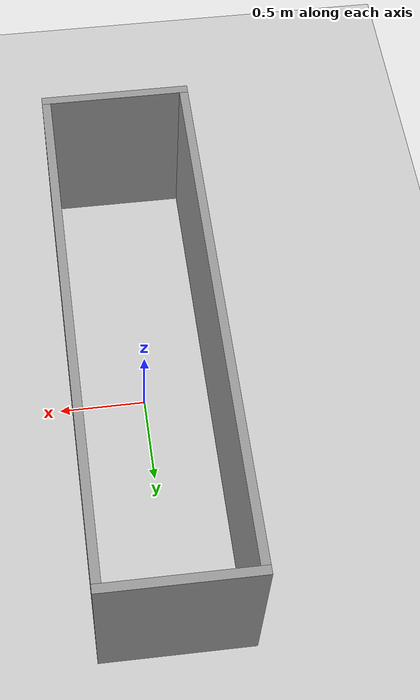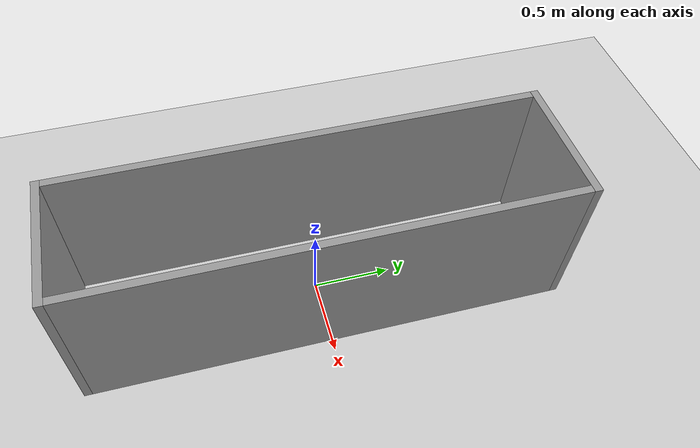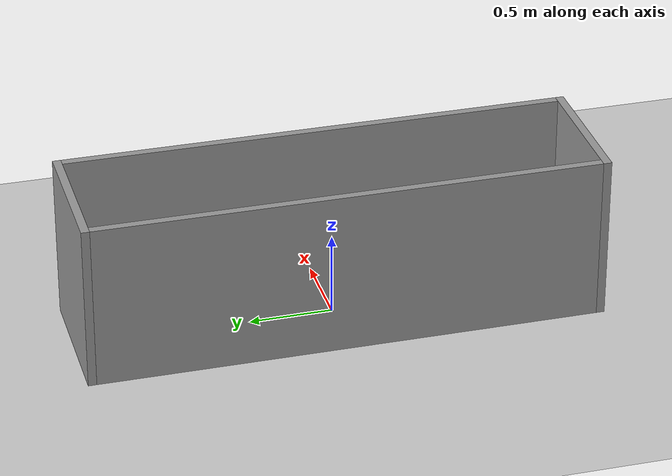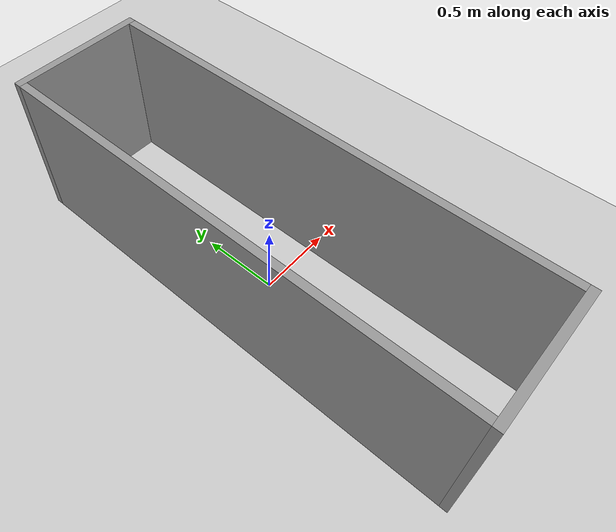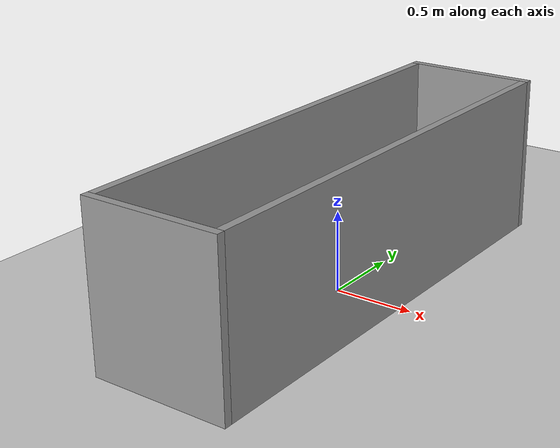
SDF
<?xml version="1.0" ?>
<sdf version="1.6">
  <world name="default">

    <!-- Iluminacion y fisica estandar -->
    <include>
      <uri>model://sun</uri>
    </include>
    <include>
      <uri>model://ground_plane</uri>
    </include>

    <gravity>0 0 -9.8</gravity>
    <physics type="ode">
      <max_step_size>0.001</max_step_size>
      <real_time_factor>1.0</real_time_factor>
      <real_time_update_rate>1000</real_time_update_rate>
    </physics>

    <model name="wall_north">
      <static>true</static>
      <pose>0 1.525 0.5 0 0 0</pose>
      <link name="link">
        <collision name="c"><geometry><box><size>0.86 0.05 1.0</size></box></geometry></collision>
        <visual name="v">
          <geometry><box><size>0.86 0.05 1.0</size></box></geometry>
          <material><script><uri>file://media/materials/scripts/gazebo.material</uri><name>Gazebo/Grey</name></script></material>
        </visual>
      </link>
    </model>

    <model name="wall_south">
      <static>true</static>
      <pose>0 -1.525 0.5 0 0 0</pose>
      <link name="link">
        <collision name="c"><geometry><box><size>0.86 0.05 1.0</size></box></geometry></collision>
        <visual name="v">
          <geometry><box><size>0.86 0.05 1.0</size></box></geometry>
          <material><script><uri>file://media/materials/scripts/gazebo.material</uri><name>Gazebo/Grey</name></script></material>
        </visual>
      </link>
    </model>

    <model name="wall_west">
      <static>true</static>
      <pose>-0.405 0 0.5 0 0 0</pose>
      <link name="link">
        <collision name="c"><geometry><box><size>0.05 3.0 1.0</size></box></geometry></collision>
        <visual name="v">
          <geometry><box><size>0.05 3.0 1.0</size></box></geometry>
          <material><script><uri>file://media/materials/scripts/gazebo.material</uri><name>Gazebo/Grey</name></script></material>
        </visual>
      </link>
    </model>

    <model name="wall_east">
      <static>true</static>
      <pose>0.405 0 0.5 0 0 0</pose>
      <link name="link">
        <collision name="c"><geometry><box><size>0.05 3.0 1.0</size></box></geometry></collision>
        <visual name="v">
          <geometry><box><size>0.05 3.0 1.0</size></box></geometry>
          <material><script><uri>file://media/materials/scripts/gazebo.material</uri><name>Gazebo/Grey</name></script></material>
        </visual>
      </link>
    </model>

  </world>
</sdf>
